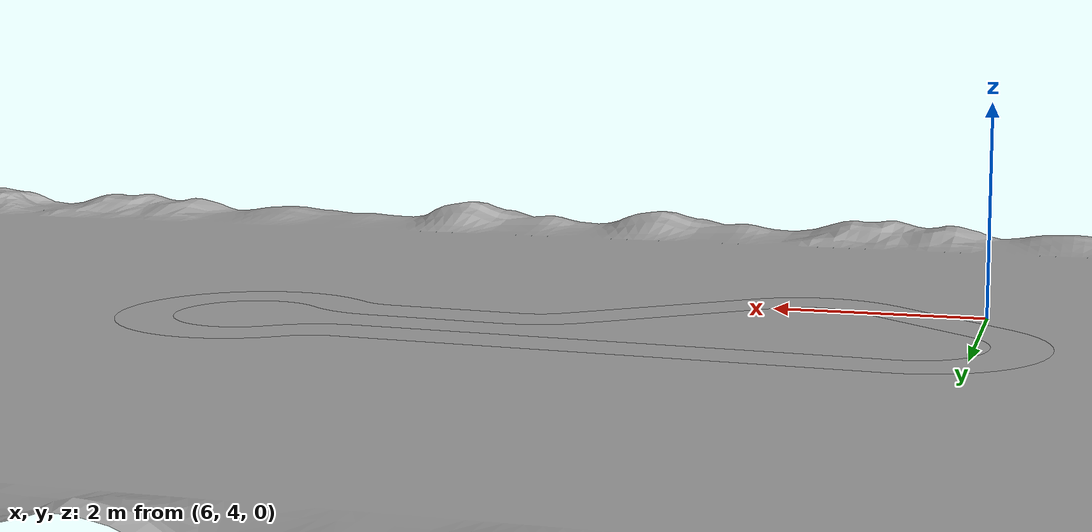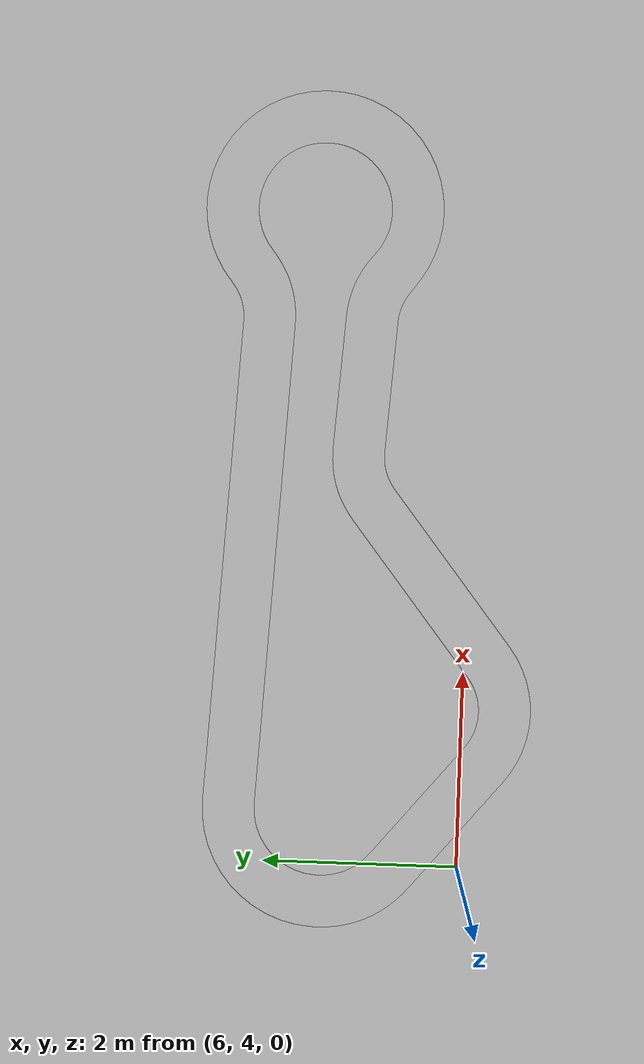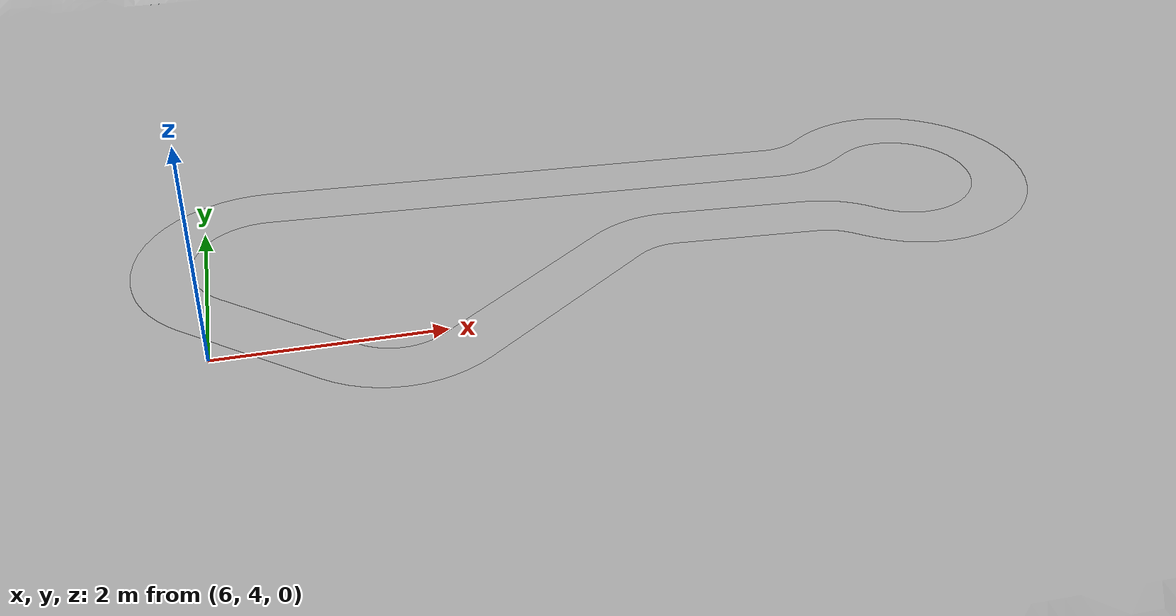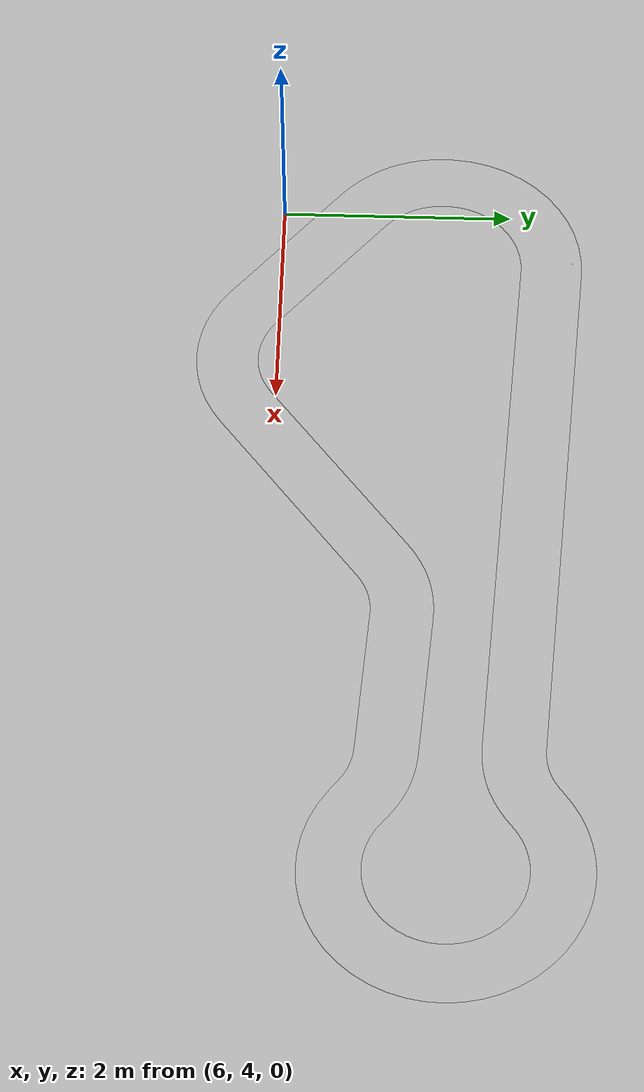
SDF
<?xml version="1.0"?>
<sdf version="1.4">
  <model name="RTIS_track">
    <link name="field">
      <collision name="collision">
        <pose>0 0 0 0 0 0</pose>
        <geometry>
          <mesh>
            <uri>model://meshes/RTIS_track/RTIS_track_field.dae</uri>
          </mesh>
        </geometry>
      </collision>
      <visual name="visual">
        <pose>0 0 0 0 0 0</pose>
        <geometry>
          <mesh>
            <uri>model://meshes/RTIS_track/RTIS_track_field.dae</uri>
          </mesh>
        </geometry>
      </visual>
    </link>
    <link name="road">
      <visual name="visual">
        <pose>0 0 0 0 0 0</pose>
        <geometry>
          <mesh>
            <uri>model://meshes/RTIS_track/RTIS_track_road.dae</uri>
          </mesh>
        </geometry>
      </visual>
    </link>
    <static>1</static>
  </model>
</sdf>
